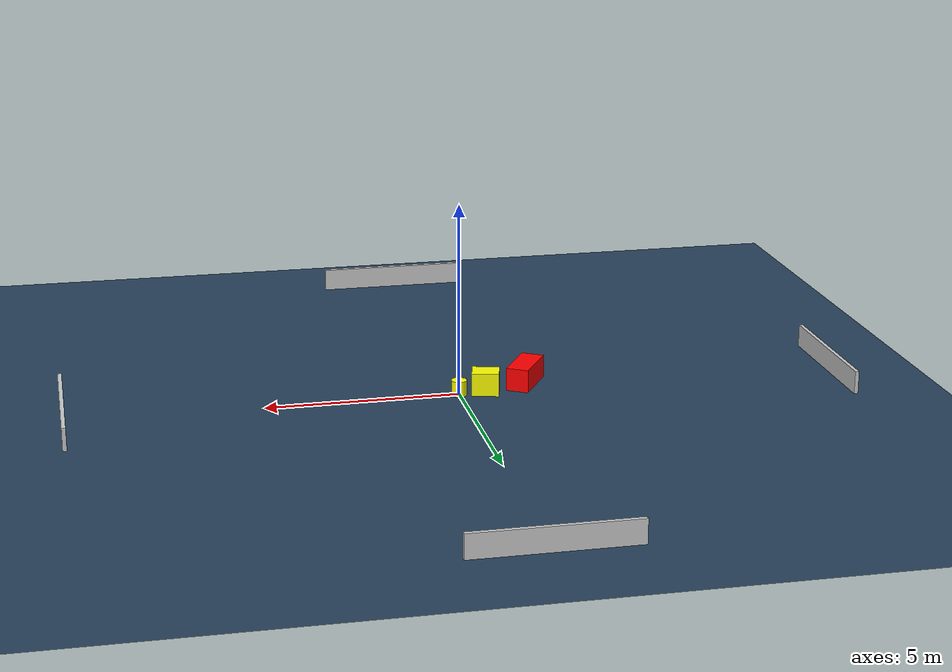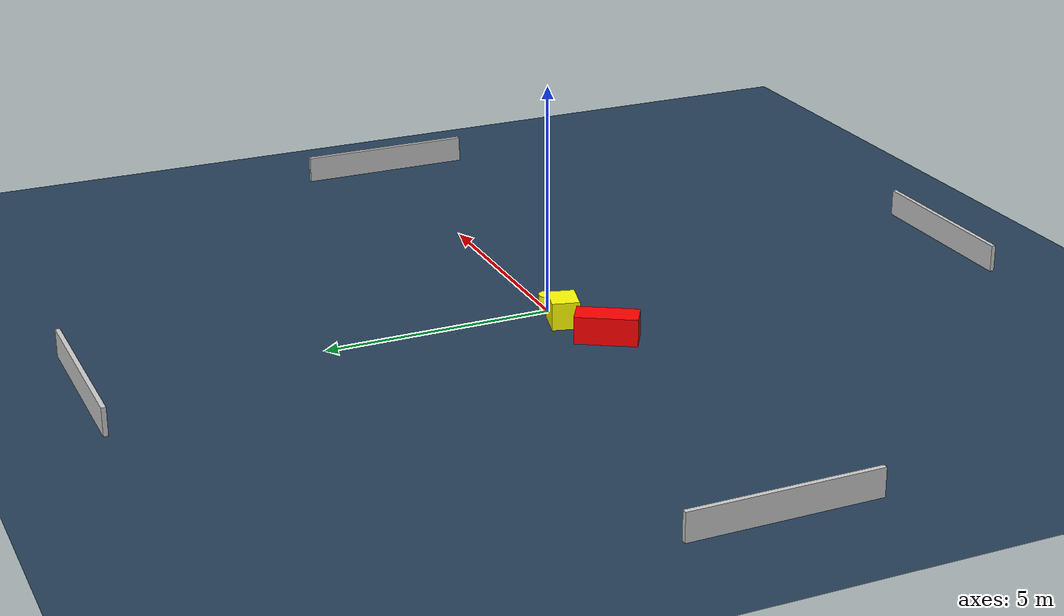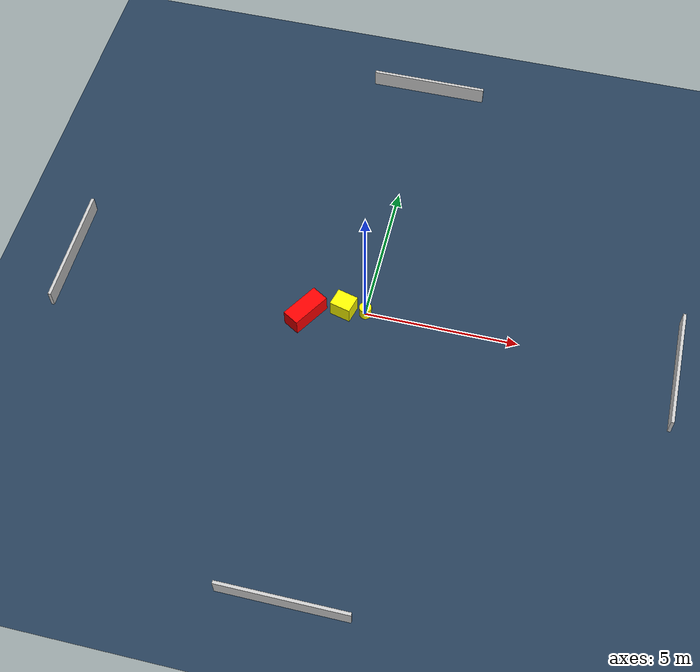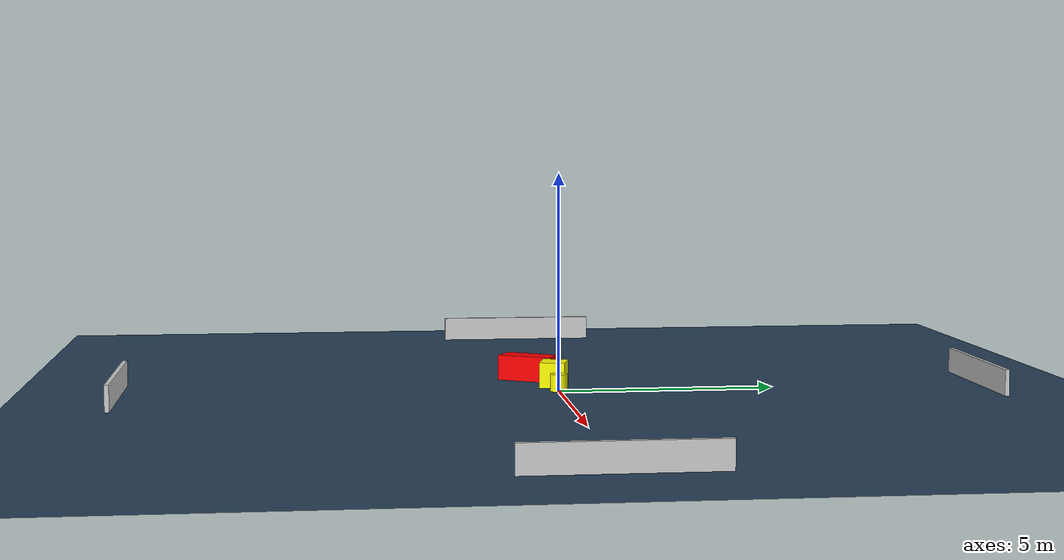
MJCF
<?xml version="1.0" ?>
<mujoco model="generated_environment">
  <option timestep="0.01" integrator="RK4" cone="elliptic"/>
  <default>
    <geom density="1"/>
  </default>
  <asset>
    <texture builtin="gradient" height="3072" name="skybox" rgb1="0.3 0.5 0.7" rgb2="0 0 0" type="skybox" width="512"/>
    <texture builtin="checker" height="300" name="groundplane" rgb1="0.2 0.3 0.4" rgb2="0.1 0.2 0.3" type="2d" width="300"/>
    <material name="groundplane" reflectance="0.2" texrepeat="5 5" texture="groundplane"/>
  </asset>
  <worldbody>
    <light dir="0 0 -1" directional="true" pos="0 0 1.5"/>
    <geom condim="3" friction="0.5 0.005 0.001" material="groundplane" name="floor" pos="0 0 0" size="0 0 0.05" type="plane"/>
    <body name="walls">
      <geom name="wall_1" condim="4" pos="-10.0 0.0 0.3" rgba="0.800000011920929 0.800000011920929 0.800000011920929 1.0" size="0.05 2.0 0.3" type="box"/>
      <geom name="wall_2" condim="4" pos="10.0 0.0 0.3" rgba="0.800000011920929 0.800000011920929 0.800000011920929 1.0" size="0.05 2.0 0.3" type="box"/>
      <geom name="wall_3" condim="4" pos="0.0 -10.0 0.3" rgba="0.800000011920929 0.800000011920929 0.800000011920929 1.0" size="2.0 0.05 0.3" type="box"/>
      <geom name="wall_4" condim="4" pos="0.0 10.0 0.3" rgba="0.800000011920929 0.800000011920929 0.800000011920929 1.0" size="2.0 0.05 0.3" type="box"/>
    </body>
    <body name="robot">
      <joint name="joint_x" type="slide" pos="0 0 0" axis="1 0 0"/>
      <joint name="joint_y" type="slide" pos="0 0 0" axis="0 1 0"/>
      <geom name="robot" type="cylinder" pos="0.0 0.0 0.2" size="0.2 0.2 0.0" mass="5.0" friction="1.0 0.005 0.0001" condim="4" rgba="1.0 1.0 0.0 1.0"/>
    </body>
    <body name="obstacle_1_movable">
      <geom name="obstacle_1_movable" condim="4" pos="-0.7047999676770123 -0.029970274504769363 0.3" euler="0 0 165.7057256543538" friction="0.0 0.005 0.001" rgba="1.0 1.0 0.0 1.0" size="0.34835759374901815 0.2976165523037839 0.3" type="box" mass="0.1"/>
      <joint type="free"/>
    </body>
    <body name="obstacle_2_static">
      <geom name="obstacle_2_static" condim="4" pos="-1.8600470782342429 -0.500855427140984 0.3" euler="0 0 148.73909679915562" friction="0.0 0.005 0.001" rgba="1.0 0.0 0.0 1.0" size="0.294313716168401 0.6673183673593196 0.3" type="box"/>
    </body>
  </worldbody>
  <actuator>
    <motor name="actuator_x" joint="joint_x" gear="1" ctrlrange="-1 1"/>
    <motor name="actuator_y" joint="joint_y" gear="1" ctrlrange="-1 1"/>
  </actuator>
</mujoco>
